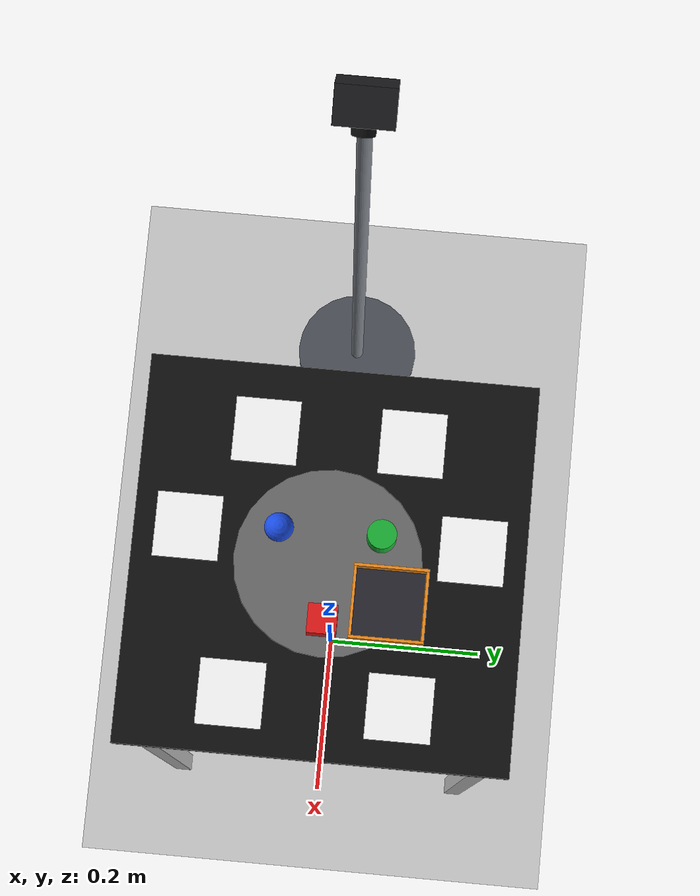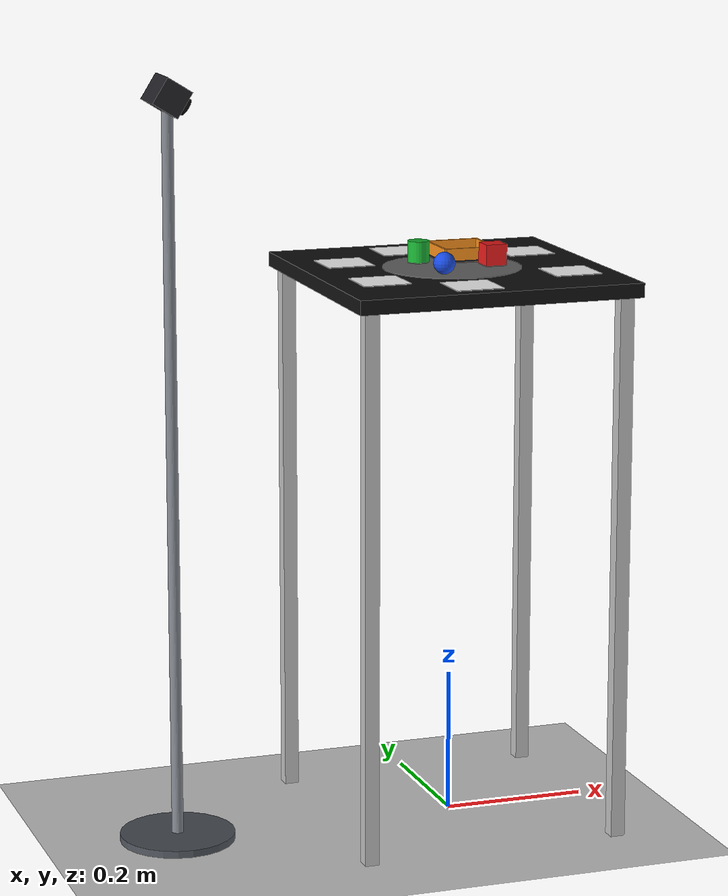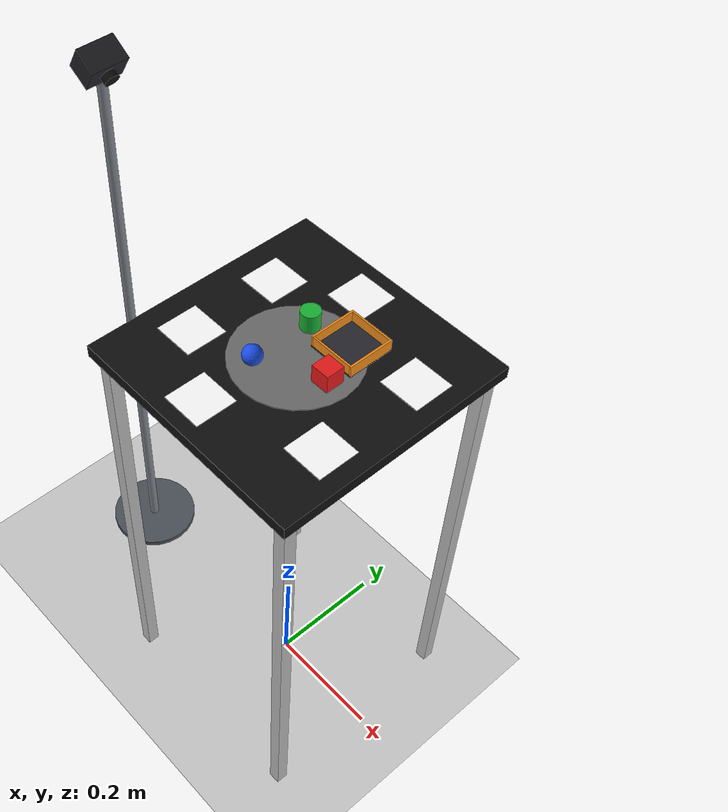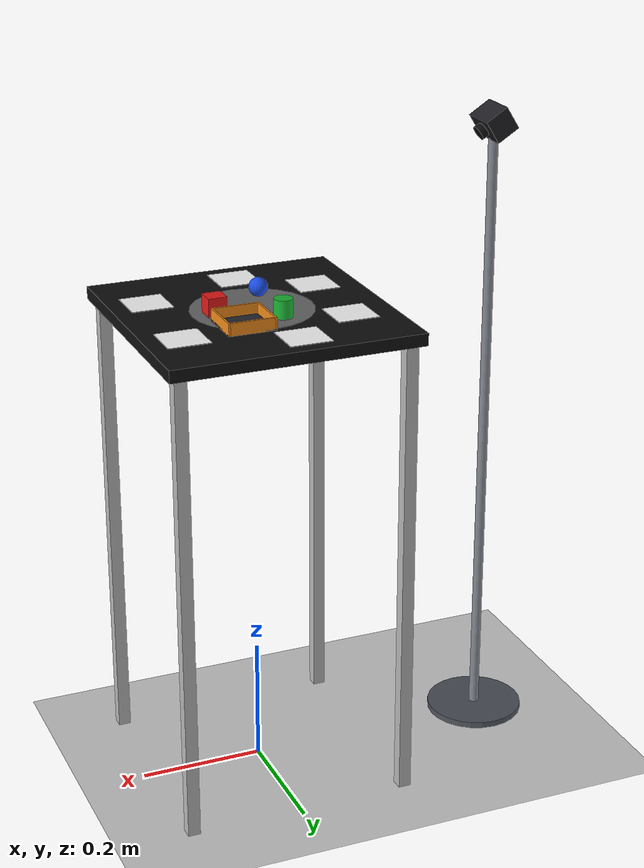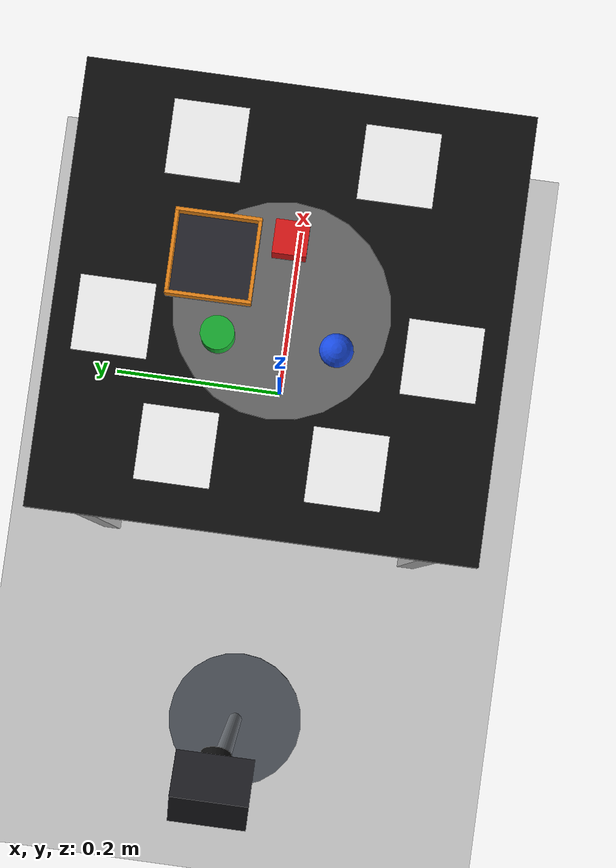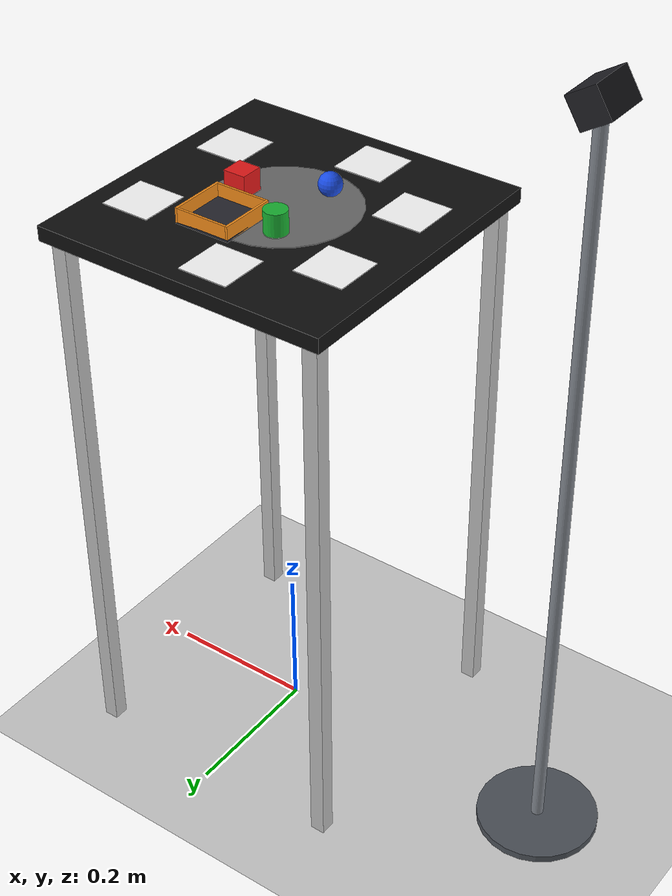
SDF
<?xml version="1.0" ?>
<sdf version="1.8">
  <world name="delta_world">

    <physics name="fast" type="dart">
      <max_step_size>0.0005</max_step_size>
      <real_time_factor>1.0</real_time_factor>
      <dart>
        <solver>
          <solver_type>pgs</solver_type>
        </solver>
        <collision_detector>ode</collision_detector>
      </dart>
    </physics>

    <plugin filename="gz-sim-physics-system"
            name="gz::sim::systems::Physics"/>
    <plugin filename="gz-sim-user-commands-system"
            name="gz::sim::systems::UserCommands"/>
    <plugin filename="gz-sim-scene-broadcaster-system"
            name="gz::sim::systems::SceneBroadcaster"/>
    <plugin filename="gz-sim-contact-system"
            name="gz::sim::systems::Contact"/>
    <!-- Cần cho cảm biến camera (Bước 8 — thị giác máy tính). -->
    <plugin filename="gz-sim-sensors-system"
            name="gz::sim::systems::Sensors">
      <render_engine>ogre2</render_engine>
    </plugin>

    <light type="directional" name="sun">
      <cast_shadows>true</cast_shadows>
      <pose>0 0 10 0 0 0</pose>
      <diffuse>0.8 0.8 0.8 1</diffuse>
      <specular>0.2 0.2 0.2 1</specular>
      <attenuation>
        <range>1000</range>
        <constant>0.9</constant>
        <linear>0.01</linear>
        <quadratic>0.001</quadratic>
      </attenuation>
      <direction>0.5 0.1 -0.9</direction>
    </light>

    <model name="ground_plane">
      <static>true</static>
      <link name="link">
        <collision name="collision">
          <geometry>
            <plane>
              <normal>0 0 1</normal>
              <size>100 100</size>
            </plane>
          </geometry>
        </collision>
        <visual name="visual">
          <geometry>
            <plane>
              <normal>0 0 1</normal>
              <size>100 100</size>
            </plane>
          </geometry>
          <material>
            <ambient>0.8 0.8 0.8 1</ambient>
            <diffuse>0.8 0.8 0.8 1</diffuse>
            <specular>0.8 0.8 0.8 1</specular>
          </material>
        </visual>
      </link>
    </model>

    <!-- ===================== Bàn làm việc ===================== -->
    <!-- Mặt bàn: đỉnh tại world z = 0.78  <=>  robot z = -0.22 -->
    <model name="work_table">
      <static>true</static>
      <link name="link">
        <collision name="top_collision">
          <pose>0 0 0.77 0 0 0</pose>
          <geometry><box><size>0.40 0.40 0.02</size></box></geometry>
        </collision>
        <visual name="top_visual">
          <pose>0 0 0.77 0 0 0</pose>
          <geometry><box><size>0.40 0.40 0.02</size></box></geometry>
          <material>
            <ambient>0.03 0.03 0.03 1</ambient>
            <diffuse>0.06 0.06 0.06 1</diffuse>
            <specular>0.02 0.02 0.02 1</specular>
          </material>
        </visual>
        <visual name="leg1"><pose>0.18 0.18 0.38 0 0 0</pose>
          <geometry><box><size>0.02 0.02 0.76</size></box></geometry></visual>
        <visual name="leg2"><pose>-0.18 0.18 0.38 0 0 0</pose>
          <geometry><box><size>0.02 0.02 0.76</size></box></geometry></visual>
        <visual name="leg3"><pose>0.18 -0.18 0.38 0 0 0</pose>
          <geometry><box><size>0.02 0.02 0.76</size></box></geometry></visual>
        <visual name="leg4"><pose>-0.18 -0.18 0.38 0 0 0</pose>
          <geometry><box><size>0.02 0.02 0.76</size></box></geometry></visual>
        <!-- Vòng đánh dấu vùng với tới ở độ cao đỉnh vật (robot z = -0.19 -> r_max ≈ 0.096).
             Chỉ có visual, không va chạm. -->
        <visual name="reach_marker">
          <pose>0 0 0.7805 0 0 0</pose>
          <geometry><cylinder><radius>0.096</radius><length>0.001</length></cylinder></geometry>
          <transparency>0.6</transparency>
          <material>
            <ambient>1 1 1 1</ambient>
            <diffuse>1 1 1 1</diffuse>
          </material>
        </visual>
      </link>
    </model>

    <!-- ===================== Vật thể ===================== -->
    <!-- Cả 3 vật cao 0.03 m, đặt trên mặt bàn, cách tâm r = 0.06 theo hướng 0°/120°/240°
         (thẳng dưới chân 1/2/3). Đỉnh vật tại robot z = -0.19. -->

    <!-- Hộp đỏ — tâm robot: (0.06, 0, -0.205); đỉnh: (0.06, 0, -0.19) -->
    <model name="red_box">
      <!-- Phát pose THẾ GIỚI của vật (nav_msgs/Odometry qua bridge) cho gripper_node. -->
      <plugin filename="gz-sim-odometry-publisher-system"
              name="gz::sim::systems::OdometryPublisher">
        <dimensions>3</dimensions>
        <odom_frame>world</odom_frame>
        <robot_base_frame>red_box</robot_base_frame>
        <odom_topic>/objects/red_box/odometry</odom_topic>
        <tf_topic>/objects/red_box/tf</tf_topic>
        <odom_publish_frequency>30</odom_publish_frequency>
      </plugin>
      <pose>0.06 0 0.795 0 0 0</pose>
      <link name="link">
        <inertial>
          <mass>0.05</mass>
          <inertia>
            <ixx>7.5e-6</ixx><iyy>7.5e-6</iyy><izz>7.5e-6</izz>
            <ixy>0</ixy><ixz>0</ixz><iyz>0</iyz>
          </inertia>
        </inertial>
        <collision name="collision">
          <geometry><box><size>0.03 0.03 0.03</size></box></geometry>
        </collision>
        <visual name="visual">
          <geometry><box><size>0.03 0.03 0.03</size></box></geometry>
          <material>
            <ambient>0.9 0.1 0.1 1</ambient>
            <diffuse>0.9 0.1 0.1 1</diffuse>
          </material>
        </visual>
      </link>
    </model>

    <!-- Trụ xanh lá — tâm robot: (-0.03, 0.052, -0.205); đỉnh: (-0.03, 0.052, -0.19) -->
    <model name="green_cylinder">
      <!-- Phát pose THẾ GIỚI của vật (nav_msgs/Odometry qua bridge) cho gripper_node. -->
      <plugin filename="gz-sim-odometry-publisher-system"
              name="gz::sim::systems::OdometryPublisher">
        <dimensions>3</dimensions>
        <odom_frame>world</odom_frame>
        <robot_base_frame>green_cylinder</robot_base_frame>
        <odom_topic>/objects/green_cylinder/odometry</odom_topic>
        <tf_topic>/objects/green_cylinder/tf</tf_topic>
        <odom_publish_frequency>30</odom_publish_frequency>
      </plugin>
      <pose>-0.03 0.052 0.795 0 0 0</pose>
      <link name="link">
        <inertial>
          <mass>0.05</mass>
          <inertia>
            <ixx>6.6e-6</ixx><iyy>6.6e-6</iyy><izz>5.6e-6</izz>
            <ixy>0</ixy><ixz>0</ixz><iyz>0</iyz>
          </inertia>
        </inertial>
        <collision name="collision">
          <geometry><cylinder><radius>0.015</radius><length>0.03</length></cylinder></geometry>
        </collision>
        <visual name="visual">
          <geometry><cylinder><radius>0.015</radius><length>0.03</length></cylinder></geometry>
          <material>
            <ambient>0.1 0.7 0.2 1</ambient>
            <diffuse>0.1 0.7 0.2 1</diffuse>
          </material>
        </visual>
      </link>
    </model>

    <!-- Cầu xanh dương — tâm robot: (-0.03, -0.052, -0.2045); đỉnh: (-0.03, -0.052, -0.1895)
         (cao hơn 0.5 mm so với hộp/trụ vì đứng trên đế chống lăn). -->
    <model name="blue_sphere">
      <!-- Phát pose THẾ GIỚI của vật (nav_msgs/Odometry qua bridge) cho gripper_node. -->
      <plugin filename="gz-sim-odometry-publisher-system"
              name="gz::sim::systems::OdometryPublisher">
        <dimensions>3</dimensions>
        <odom_frame>world</odom_frame>
        <robot_base_frame>blue_sphere</robot_base_frame>
        <odom_topic>/objects/blue_sphere/odometry</odom_topic>
        <tf_topic>/objects/blue_sphere/tf</tf_topic>
        <odom_publish_frequency>30</odom_publish_frequency>
      </plugin>
      <pose>-0.03 -0.052 0.7955 0 0 0</pose>
      <link name="link">
        <inertial>
          <mass>0.05</mass>
          <inertia>
            <ixx>4.5e-6</ixx><iyy>4.5e-6</iyy><izz>4.5e-6</izz>
            <ixy>0</ixy><ixz>0</ixz><iyz>0</iyz>
          </inertia>
        </inertial>
        <collision name="collision">
          <geometry><sphere><radius>0.015</radius></sphere></geometry>
        </collision>
        <collision name="anti_roll_base">
          <pose>0 0 -0.0145 0 0 0</pose>
          <geometry><cylinder><radius>0.007</radius><length>0.002</length></cylinder></geometry>
        </collision>
        <visual name="visual">
          <geometry><sphere><radius>0.015</radius></sphere></geometry>
          <material>
            <ambient>0.1 0.3 0.9 1</ambient>
            <diffuse>0.1 0.3 0.9 1</diffuse>
          </material>
        </visual>
      </link>
    </model>

    <!-- ===================== Khay thả vật ===================== -->
    <model name="drop_bin">
      <static>true</static>
      <pose>0.0375 0.065 0.78 0 0 0</pose>
      <link name="link">
        <collision name="floor_collision">
          <pose>0 0 0.0015 0 0 0</pose>
          <geometry><box><size>0.076 0.076 0.003</size></box></geometry>
        </collision>
        <visual name="floor_visual">
          <pose>0 0 0.0015 0 0 0</pose>
          <geometry><box><size>0.076 0.076 0.003</size></box></geometry>
          <material><ambient>0.15 0.15 0.18 1</ambient><diffuse>0.15 0.15 0.18 1</diffuse></material>
        </visual>

        <collision name="wall_px_collision">
          <pose>0.0365 0 0.01 0 0 0</pose>
          <geometry><box><size>0.003 0.076 0.02</size></box></geometry>
        </collision>
        <visual name="wall_px_visual">
          <pose>0.0365 0 0.01 0 0 0</pose>
          <geometry><box><size>0.003 0.076 0.02</size></box></geometry>
          <material><ambient>0.95 0.55 0.1 1</ambient><diffuse>0.95 0.55 0.1 1</diffuse></material>
        </visual>

        <collision name="wall_nx_collision">
          <pose>-0.0365 0 0.01 0 0 0</pose>
          <geometry><box><size>0.003 0.076 0.02</size></box></geometry>
        </collision>
        <visual name="wall_nx_visual">
          <pose>-0.0365 0 0.01 0 0 0</pose>
          <geometry><box><size>0.003 0.076 0.02</size></box></geometry>
          <material><ambient>0.95 0.55 0.1 1</ambient><diffuse>0.95 0.55 0.1 1</diffuse></material>
        </visual>

        <collision name="wall_py_collision">
          <pose>0 0.0365 0.01 0 0 0</pose>
          <geometry><box><size>0.07 0.003 0.02</size></box></geometry>
        </collision>
        <visual name="wall_py_visual">
          <pose>0 0.0365 0.01 0 0 0</pose>
          <geometry><box><size>0.07 0.003 0.02</size></box></geometry>
          <material><ambient>0.95 0.55 0.1 1</ambient><diffuse>0.95 0.55 0.1 1</diffuse></material>
        </visual>

        <collision name="wall_ny_collision">
          <pose>0 -0.0365 0.01 0 0 0</pose>
          <geometry><box><size>0.07 0.003 0.02</size></box></geometry>
        </collision>
        <visual name="wall_ny_visual">
          <pose>0 -0.0365 0.01 0 0 0</pose>
          <geometry><box><size>0.07 0.003 0.02</size></box></geometry>
          <material><ambient>0.95 0.55 0.1 1</ambient><diffuse>0.95 0.55 0.1 1</diffuse></material>
        </visual>
      </link>
    </model>

    <model name="calib_markers">
      <static>true</static>
      <link name="link">
        <visual name="aruco_0">
          <pose>-0.13 0.075 0.7805 0 0 0</pose>
          <geometry><box><size>0.06667 0.06667 0.001</size></box></geometry>
          <material>
            <ambient>1 1 1 1</ambient><diffuse>1 1 1 1</diffuse><specular>0 0 0 1</specular>
            <pbr><metal>
              <albedo_map>model://closed_loop_description/materials/textures/aruco_0.png</albedo_map>
              <roughness>1.0</roughness><metalness>0.0</metalness>
            </metal></pbr>
          </material>
        </visual>
        <visual name="aruco_1">
          <pose>-0.13 -0.075 0.7805 0 0 0</pose>
          <geometry><box><size>0.06667 0.06667 0.001</size></box></geometry>
          <material>
            <ambient>1 1 1 1</ambient><diffuse>1 1 1 1</diffuse><specular>0 0 0 1</specular>
            <pbr><metal>
              <albedo_map>model://closed_loop_description/materials/textures/aruco_1.png</albedo_map>
              <roughness>1.0</roughness><metalness>0.0</metalness>
            </metal></pbr>
          </material>
        </visual>
        <visual name="aruco_2">
          <pose>-0.025 0.145 0.7805 0 0 0</pose>
          <geometry><box><size>0.06667 0.06667 0.001</size></box></geometry>
          <material>
            <ambient>1 1 1 1</ambient><diffuse>1 1 1 1</diffuse><specular>0 0 0 1</specular>
            <pbr><metal>
              <albedo_map>model://closed_loop_description/materials/textures/aruco_2.png</albedo_map>
              <roughness>1.0</roughness><metalness>0.0</metalness>
            </metal></pbr>
          </material>
        </visual>
        <visual name="aruco_3">
          <pose>-0.025 -0.145 0.7805 0 0 0</pose>
          <geometry><box><size>0.06667 0.06667 0.001</size></box></geometry>
          <material>
            <ambient>1 1 1 1</ambient><diffuse>1 1 1 1</diffuse><specular>0 0 0 1</specular>
            <pbr><metal>
              <albedo_map>model://closed_loop_description/materials/textures/aruco_3.png</albedo_map>
              <roughness>1.0</roughness><metalness>0.0</metalness>
            </metal></pbr>
          </material>
        </visual>
        <visual name="aruco_4">
          <pose>0.14 0.085 0.7805 0 0 0</pose>
          <geometry><box><size>0.06667 0.06667 0.001</size></box></geometry>
          <material>
            <ambient>1 1 1 1</ambient><diffuse>1 1 1 1</diffuse><specular>0 0 0 1</specular>
            <pbr><metal>
              <albedo_map>model://closed_loop_description/materials/textures/aruco_4.png</albedo_map>
              <roughness>1.0</roughness><metalness>0.0</metalness>
            </metal></pbr>
          </material>
        </visual>
        <visual name="aruco_5">
          <pose>0.14 -0.085 0.7805 0 0 0</pose>
          <geometry><box><size>0.06667 0.06667 0.001</size></box></geometry>
          <material>
            <ambient>1 1 1 1</ambient><diffuse>1 1 1 1</diffuse><specular>0 0 0 1</specular>
            <pbr><metal>
              <albedo_map>model://closed_loop_description/materials/textures/aruco_5.png</albedo_map>
              <roughness>1.0</roughness><metalness>0.0</metalness>
            </metal></pbr>
          </material>
        </visual>
      </link>
    </model>

    <!-- ===================== Camera nhìn xiên (Bước 8.1) ===================== -->
    <model name="side_camera">
      <static>true</static>
      <pose>-0.40 0 1.03 0 0.558599 0</pose>
      <link name="link">
        <visual name="body">
          <geometry><box><size>0.04 0.06 0.04</size></box></geometry>
          <material><ambient>0.12 0.12 0.14 1</ambient><diffuse>0.12 0.12 0.14 1</diffuse></material>
        </visual>
        <visual name="lens">
          <pose>0.025 0 0 0 1.5708 0</pose>
          <geometry><cylinder><radius>0.012</radius><length>0.012</length></cylinder></geometry>
          <material><ambient>0.05 0.05 0.05 1</ambient><diffuse>0.05 0.05 0.05 1</diffuse></material>
        </visual>
        <sensor name="side_camera" type="camera">
          <always_on>true</always_on>
          <update_rate>10</update_rate>
          <visualize>true</visualize>
          <topic>side_camera/image</topic>
          <gz_frame_id>side_camera</gz_frame_id>
          <camera>
            <horizontal_fov>0.785398</horizontal_fov>
            <image>
              <width>640</width>
              <height>480</height>
              <format>R8G8B8</format>
            </image>
            <clip>
              <near>0.05</near>
              <far>3.0</far>
            </clip>
            <noise>
              <type>gaussian</type>
              <mean>0.0</mean>
              <stddev>0.007</stddev>
            </noise>
          </camera>
        </sensor>
      </link>
    </model>

    <!-- Chân đế camera (chỉ hiển thị). -->
    <model name="side_camera_stand">
      <static>true</static>
      <pose>-0.40 0 0 0 0 0</pose>
      <link name="link">
        <visual name="pole">
          <pose>0 0 0.505 0 0 0</pose>
          <geometry><cylinder><radius>0.008</radius><length>1.01</length></cylinder></geometry>
          <material><ambient>0.5 0.52 0.55 1</ambient><diffuse>0.5 0.52 0.55 1</diffuse></material>
        </visual>
        <visual name="foot">
          <pose>0 0 0.005 0 0 0</pose>
          <geometry><cylinder><radius>0.08</radius><length>0.01</length></cylinder></geometry>
          <material><ambient>0.3 0.32 0.35 1</ambient><diffuse>0.3 0.32 0.35 1</diffuse></material>
        </visual>
      </link>
    </model>

  </world>
</sdf>
